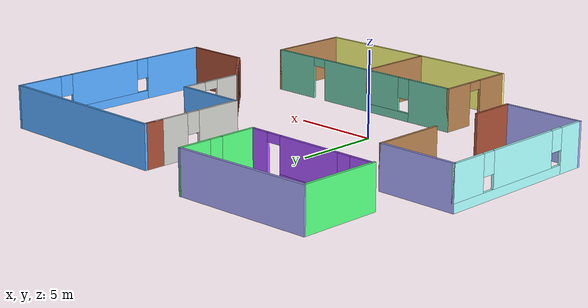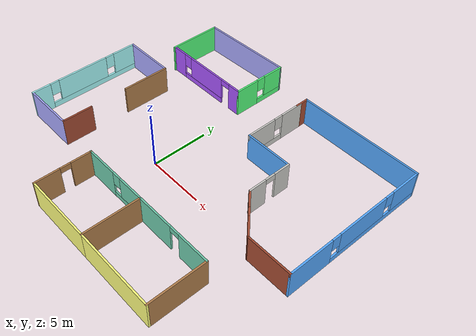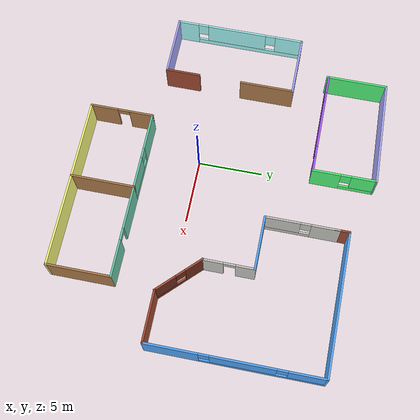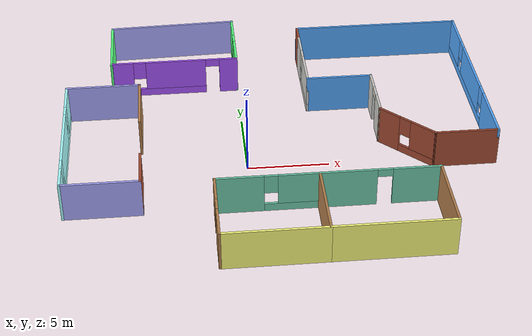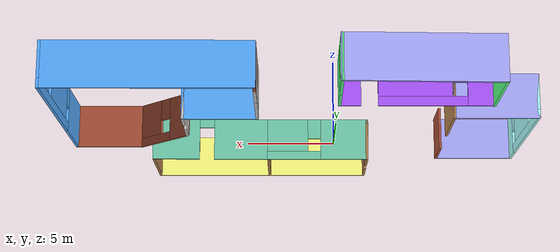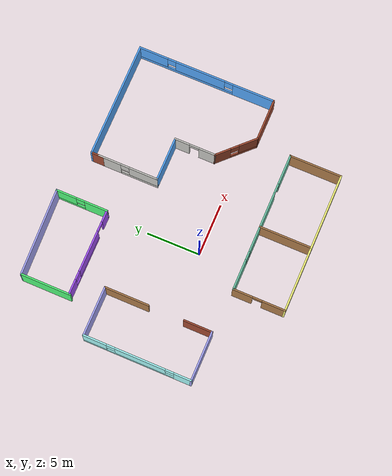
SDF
<?xml version='1.0'?>
<sdf version='1.6'>
  <model name='project_world'>
    <pose frame=''>2.07578 2.357 0 0 -0 0</pose>
    <link name='Wall_1'>
      <pose frame=''>-1.23578 -6.487 0 0 -0 0</pose>
      <visual name='Wall_1_Visual_0'>
        <pose frame=''>-1.65552 0 1.25 0 -0 0</pose>
        <geometry>
          <box>
            <size>2.93896 0.15 2.5</size>
          </box>
        </geometry>
        <material>
          <script>
            <uri>file://media/materials/scripts/gazebo.material</uri>
            <name>Gazebo/Grey</name>
          </script>
          <ambient>0.435294 0.796078 0.67451 1</ambient>
        </material>
        <meta>
          <layer>0</layer>
        </meta>
      </visual>
      <collision name='Wall_1_Collision_0'>
        <geometry>
          <box>
            <size>2.93896 0.15 2.5</size>
          </box>
        </geometry>
        <pose frame=''>-1.65552 0 1.25 0 -0 0</pose>
      </collision>
      <visual name='Wall_1_Visual_1'>
        <pose frame=''>1.46948 0 0.25 0 -0 0</pose>
        <geometry>
          <box>
            <size>3.31104 0.15 0.5</size>
          </box>
        </geometry>
        <material>
          <script>
            <uri>file://media/materials/scripts/gazebo.material</uri>
            <name>Gazebo/Grey</name>
          </script>
          <ambient>0.435294 0.796078 0.67451 1</ambient>
        </material>
        <meta>
          <layer>0</layer>
        </meta>
      </visual>
      <collision name='Wall_1_Collision_1'>
        <geometry>
          <box>
            <size>3.31104 0.15 0.5</size>
          </box>
        </geometry>
        <pose frame=''>1.46948 0 0.25 0 -0 0</pose>
      </collision>
      <visual name='Wall_1_Visual_2'>
        <pose frame=''>1.86948 0 1.5 0 -0 0</pose>
        <geometry>
          <box>
            <size>2.51104 0.15 2</size>
          </box>
        </geometry>
        <material>
          <script>
            <uri>file://media/materials/scripts/gazebo.material</uri>
            <name>Gazebo/Grey</name>
          </script>
          <ambient>0.435294 0.796078 0.67451 1</ambient>
        </material>
        <meta>
          <layer>0</layer>
        </meta>
      </visual>
      <collision name='Wall_1_Collision_2'>
        <geometry>
          <box>
            <size>2.51104 0.15 2</size>
          </box>
        </geometry>
        <pose frame=''>1.86948 0 1.5 0 -0 0</pose>
      </collision>
      <visual name='Wall_1_Visual_3'>
        <pose frame=''>0.213964 0 1.9 0 -0 0</pose>
        <geometry>
          <box>
            <size>0.8 0.15 1.2</size>
          </box>
        </geometry>
        <material>
          <script>
            <uri>file://media/materials/scripts/gazebo.material</uri>
            <name>Gazebo/Grey</name>
          </script>
          <ambient>0.435294 0.796078 0.67451 1</ambient>
        </material>
        <meta>
          <layer>0</layer>
        </meta>
      </visual>
      <collision name='Wall_1_Collision_3'>
        <geometry>
          <box>
            <size>0.8 0.15 1.2</size>
          </box>
        </geometry>
        <pose frame=''>0.213964 0 1.9 0 -0 0</pose>
      </collision>
    </link>
    <link name='Wall_11'>
      <collision name='Wall_11_Collision'>
        <geometry>
          <box>
            <size>2.75 0.15 2.5</size>
          </box>
        </geometry>
        <pose frame=''>0 0 1.25 0 -0 0</pose>
      </collision>
      <visual name='Wall_11_Visual'>
        <pose frame=''>0 0 1.25 0 -0 0</pose>
        <geometry>
          <box>
            <size>2.75 0.15 2.5</size>
          </box>
        </geometry>
        <material>
          <script>
            <uri>file://media/materials/scripts/gazebo.material</uri>
            <name>Gazebo/Bricks</name>
          </script>
          <ambient>1 1 1 1</ambient>
        </material>
        <meta>
          <layer>0</layer>
        </meta>
      </visual>
      <pose frame=''>-8.5094 -4.95184 0 0 -0 1.5708</pose>
    </link>
    <link name='Wall_13'>
      <pose frame=''>-6.18981 6.48446 0 0 -0 0</pose>
      <visual name='Wall_13_Visual_0'>
        <pose frame=''>-3.41981 0 1.25 0 -0 0</pose>
        <geometry>
          <box>
            <size>1.41037 0.15 2.5</size>
          </box>
        </geometry>
        <material>
          <script>
            <uri>file://media/materials/scripts/gazebo.material</uri>
            <name>Gazebo/Grey</name>
          </script>
          <ambient>0.666667 0.333333 1 1</ambient>
        </material>
        <meta>
          <layer>0</layer>
        </meta>
      </visual>
      <collision name='Wall_13_Collision_0'>
        <geometry>
          <box>
            <size>1.41037 0.15 2.5</size>
          </box>
        </geometry>
        <pose frame=''>-3.41981 0 1.25 0 -0 0</pose>
      </collision>
      <visual name='Wall_13_Visual_1'>
        <pose frame=''>3.52234 0 1.25 0 -0 0</pose>
        <geometry>
          <box>
            <size>1.20531 0.15 2.5</size>
          </box>
        </geometry>
        <material>
          <script>
            <uri>file://media/materials/scripts/gazebo.material</uri>
            <name>Gazebo/Grey</name>
          </script>
          <ambient>0.666667 0.333333 1 1</ambient>
        </material>
        <meta>
          <layer>0</layer>
        </meta>
      </visual>
      <collision name='Wall_13_Collision_1'>
        <geometry>
          <box>
            <size>1.20531 0.15 2.5</size>
          </box>
        </geometry>
        <pose frame=''>3.52234 0 1.25 0 -0 0</pose>
      </collision>
      <visual name='Wall_13_Visual_2'>
        <pose frame=''>-0.34747 0 0.25 0 -0 0</pose>
        <geometry>
          <box>
            <size>4.73431 0.15 0.5</size>
          </box>
        </geometry>
        <material>
          <script>
            <uri>file://media/materials/scripts/gazebo.material</uri>
            <name>Gazebo/Grey</name>
          </script>
          <ambient>0.666667 0.333333 1 1</ambient>
        </material>
        <meta>
          <layer>0</layer>
        </meta>
      </visual>
      <collision name='Wall_13_Collision_2'>
        <geometry>
          <box>
            <size>4.73431 0.15 0.5</size>
          </box>
        </geometry>
        <pose frame=''>-0.34747 0 0.25 0 -0 0</pose>
      </collision>
      <visual name='Wall_13_Visual_3'>
        <pose frame=''>0.05253 0 1.5 0 -0 0</pose>
        <geometry>
          <box>
            <size>3.93431 0.15 2</size>
          </box>
        </geometry>
        <material>
          <script>
            <uri>file://media/materials/scripts/gazebo.material</uri>
            <name>Gazebo/Grey</name>
          </script>
          <ambient>0.666667 0.333333 1 1</ambient>
        </material>
        <meta>
          <layer>0</layer>
        </meta>
      </visual>
      <collision name='Wall_13_Collision_3'>
        <geometry>
          <box>
            <size>3.93431 0.15 2</size>
          </box>
        </geometry>
        <pose frame=''>0.05253 0 1.5 0 -0 0</pose>
      </collision>
      <visual name='Wall_13_Visual_4'>
        <pose frame=''>-2.31463 0 1.9 0 -0 0</pose>
        <geometry>
          <box>
            <size>0.8 0.15 1.2</size>
          </box>
        </geometry>
        <material>
          <script>
            <uri>file://media/materials/scripts/gazebo.material</uri>
            <name>Gazebo/Grey</name>
          </script>
          <ambient>0.666667 0.333333 1 1</ambient>
        </material>
        <meta>
          <layer>0</layer>
        </meta>
      </visual>
      <collision name='Wall_13_Collision_4'>
        <geometry>
          <box>
            <size>0.8 0.15 1.2</size>
          </box>
        </geometry>
        <pose frame=''>-2.31463 0 1.9 0 -0 0</pose>
      </collision>
      <visual name='Wall_13_Visual_5'>
        <pose frame=''>2.46969 0 2.25 0 -0 0</pose>
        <geometry>
          <box>
            <size>0.9 0.15 0.5</size>
          </box>
        </geometry>
        <material>
          <script>
            <uri>file://media/materials/scripts/gazebo.material</uri>
            <name>Gazebo/Grey</name>
          </script>
          <ambient>0.666667 0.333333 1 1</ambient>
        </material>
        <meta>
          <layer>0</layer>
        </meta>
      </visual>
      <collision name='Wall_13_Collision_5'>
        <geometry>
          <box>
            <size>0.9 0.15 0.5</size>
          </box>
        </geometry>
        <pose frame=''>2.46969 0 2.25 0 -0 0</pose>
      </collision>
    </link>
    <link name='Wall_14'>
      <pose frame=''>-2.13981 8.90946 0 0 -0 1.5708</pose>
      <visual name='Wall_14_Visual_0'>
        <pose frame=''>-1.38846 0 1.25 0 -0 0</pose>
        <geometry>
          <box>
            <size>2.22308 0.15 2.5</size>
          </box>
        </geometry>
        <material>
          <script>
            <uri>file://media/materials/scripts/gazebo.material</uri>
            <name>Gazebo/Grey</name>
          </script>
          <ambient>0.333333 1 0.498039 1</ambient>
        </material>
        <meta>
          <layer>0</layer>
        </meta>
      </visual>
      <collision name='Wall_14_Collision_0'>
        <geometry>
          <box>
            <size>2.22308 0.15 2.5</size>
          </box>
        </geometry>
        <pose frame=''>-1.38846 0 1.25 0 -0 0</pose>
      </collision>
      <visual name='Wall_14_Visual_1'>
        <pose frame=''>1.11154 0 0.25 0 -0 0</pose>
        <geometry>
          <box>
            <size>2.77692 0.15 0.5</size>
          </box>
        </geometry>
        <material>
          <script>
            <uri>file://media/materials/scripts/gazebo.material</uri>
            <name>Gazebo/Grey</name>
          </script>
          <ambient>0.333333 1 0.498039 1</ambient>
        </material>
        <meta>
          <layer>0</layer>
        </meta>
      </visual>
      <collision name='Wall_14_Collision_1'>
        <geometry>
          <box>
            <size>2.77692 0.15 0.5</size>
          </box>
        </geometry>
        <pose frame=''>1.11154 0 0.25 0 -0 0</pose>
      </collision>
      <visual name='Wall_14_Visual_2'>
        <pose frame=''>1.51154 0 1.5 0 -0 0</pose>
        <geometry>
          <box>
            <size>1.97692 0.15 2</size>
          </box>
        </geometry>
        <material>
          <script>
            <uri>file://media/materials/scripts/gazebo.material</uri>
            <name>Gazebo/Grey</name>
          </script>
          <ambient>0.333333 1 0.498039 1</ambient>
        </material>
        <meta>
          <layer>0</layer>
        </meta>
      </visual>
      <collision name='Wall_14_Collision_2'>
        <geometry>
          <box>
            <size>1.97692 0.15 2</size>
          </box>
        </geometry>
        <pose frame=''>1.51154 0 1.5 0 -0 0</pose>
      </collision>
      <visual name='Wall_14_Visual_3'>
        <pose frame=''>0.123076 0 1.9 0 -0 0</pose>
        <geometry>
          <box>
            <size>0.8 0.15 1.2</size>
          </box>
        </geometry>
        <material>
          <script>
            <uri>file://media/materials/scripts/gazebo.material</uri>
            <name>Gazebo/Grey</name>
          </script>
          <ambient>0.333333 1 0.498039 1</ambient>
        </material>
        <meta>
          <layer>0</layer>
        </meta>
      </visual>
      <collision name='Wall_14_Collision_3'>
        <geometry>
          <box>
            <size>0.8 0.15 1.2</size>
          </box>
        </geometry>
        <pose frame=''>0.123076 0 1.9 0 -0 0</pose>
      </collision>
    </link>
    <link name='Wall_15'>
      <collision name='Wall_15_Collision'>
        <geometry>
          <box>
            <size>8.3252 0.15 2.5</size>
          </box>
        </geometry>
        <pose frame=''>0 0 1.25 0 -0 0</pose>
      </collision>
      <visual name='Wall_15_Visual'>
        <pose frame=''>0 0 1.25 0 -0 0</pose>
        <geometry>
          <box>
            <size>8.3252 0.15 2.5</size>
          </box>
        </geometry>
        <material>
          <script>
            <uri>file://media/materials/scripts/gazebo.material</uri>
            <name>Gazebo/Grey</name>
          </script>
          <ambient>0.666667 0.666667 1 1</ambient>
        </material>
        <meta>
          <layer>0</layer>
        </meta>
      </visual>
      <pose frame=''>-6.22499 11.1937 0 0 0 -3.10716</pose>
    </link>
    <link name='Wall_16'>
      <collision name='Wall_16_Collision'>
        <geometry>
          <box>
            <size>4.75 0.15 2.5</size>
          </box>
        </geometry>
        <pose frame=''>0 0 1.25 0 -0 0</pose>
      </collision>
      <visual name='Wall_16_Visual'>
        <pose frame=''>0 0 1.25 0 -0 0</pose>
        <geometry>
          <box>
            <size>4.75 0.15 2.5</size>
          </box>
        </geometry>
        <material>
          <script>
            <uri>file://media/materials/scripts/gazebo.material</uri>
            <name>Gazebo/Grey</name>
          </script>
          <ambient>0.333333 1 0.498039 1</ambient>
        </material>
        <meta>
          <layer>0</layer>
        </meta>
      </visual>
      <pose frame=''>-10.3102 8.68268 0 0 0 -1.5708</pose>
    </link>
    <link name='Wall_18'>
      <pose frame=''>5.36422 -6.487 0 0 -0 0</pose>
      <visual name='Wall_18_Visual_0'>
        <pose frame=''>-1.90549 0 1.25 0 -0 0</pose>
        <geometry>
          <box>
            <size>3.43901 0.15 2.5</size>
          </box>
        </geometry>
        <material>
          <script>
            <uri>file://media/materials/scripts/gazebo.material</uri>
            <name>Gazebo/Grey</name>
          </script>
          <ambient>0.435294 0.796078 0.67451 1</ambient>
        </material>
        <meta>
          <layer>0</layer>
        </meta>
      </visual>
      <collision name='Wall_18_Collision_0'>
        <geometry>
          <box>
            <size>3.43901 0.15 2.5</size>
          </box>
        </geometry>
        <pose frame=''>-1.90549 0 1.25 0 -0 0</pose>
      </collision>
      <visual name='Wall_18_Visual_1'>
        <pose frame=''>2.16951 0 1.25 0 -0 0</pose>
        <geometry>
          <box>
            <size>2.91099 0.15 2.5</size>
          </box>
        </geometry>
        <material>
          <script>
            <uri>file://media/materials/scripts/gazebo.material</uri>
            <name>Gazebo/Grey</name>
          </script>
          <ambient>0.435294 0.796078 0.67451 1</ambient>
        </material>
        <meta>
          <layer>0</layer>
        </meta>
      </visual>
      <collision name='Wall_18_Collision_1'>
        <geometry>
          <box>
            <size>2.91099 0.15 2.5</size>
          </box>
        </geometry>
        <pose frame=''>2.16951 0 1.25 0 -0 0</pose>
      </collision>
      <visual name='Wall_18_Visual_2'>
        <pose frame=''>0.264014 0 2.25 0 -0 0</pose>
        <geometry>
          <box>
            <size>0.9 0.15 0.5</size>
          </box>
        </geometry>
        <material>
          <script>
            <uri>file://media/materials/scripts/gazebo.material</uri>
            <name>Gazebo/Grey</name>
          </script>
          <ambient>0.435294 0.796078 0.67451 1</ambient>
        </material>
        <meta>
          <layer>0</layer>
        </meta>
      </visual>
      <collision name='Wall_18_Collision_2'>
        <geometry>
          <box>
            <size>0.9 0.15 0.5</size>
          </box>
        </geometry>
        <pose frame=''>0.264014 0 2.25 0 -0 0</pose>
      </collision>
    </link>
    <link name='Wall_19'>
      <collision name='Wall_19_Collision'>
        <geometry>
          <box>
            <size>5 0.15 2.5</size>
          </box>
        </geometry>
        <pose frame=''>0 0 1.25 0 -0 0</pose>
      </collision>
      <visual name='Wall_19_Visual'>
        <pose frame=''>0 0 1.25 0 -0 0</pose>
        <geometry>
          <box>
            <size>5 0.15 2.5</size>
          </box>
        </geometry>
        <material>
          <script>
            <uri>file://media/materials/scripts/gazebo.material</uri>
            <name>Gazebo/Wood</name>
          </script>
          <ambient>1 1 1 1</ambient>
        </material>
        <meta>
          <layer>0</layer>
        </meta>
      </visual>
      <pose frame=''>8.91422 -8.912 0 0 0 -1.5708</pose>
    </link>
    <link name='Wall_2'>
      <collision name='Wall_2_Collision'>
        <geometry>
          <box>
            <size>5 0.15 2.5</size>
          </box>
        </geometry>
        <pose frame=''>0 0 1.25 0 -0 0</pose>
      </collision>
      <visual name='Wall_2_Visual'>
        <pose frame=''>0 0 1.25 0 -0 0</pose>
        <geometry>
          <box>
            <size>5 0.15 2.5</size>
          </box>
        </geometry>
        <material>
          <script>
            <uri>file://media/materials/scripts/gazebo.material</uri>
            <name>Gazebo/Wood</name>
          </script>
          <ambient>1 1 1 1</ambient>
        </material>
        <meta>
          <layer>0</layer>
        </meta>
      </visual>
      <pose frame=''>1.81422 -8.912 0 0 0 -1.5708</pose>
    </link>
    <link name='Wall_20'>
      <collision name='Wall_20_Collision'>
        <geometry>
          <box>
            <size>7.25 0.15 2.5</size>
          </box>
        </geometry>
        <pose frame=''>0 0 1.25 0 -0 0</pose>
      </collision>
      <visual name='Wall_20_Visual'>
        <pose frame=''>0 0 1.25 0 -0 0</pose>
        <geometry>
          <box>
            <size>7.25 0.15 2.5</size>
          </box>
        </geometry>
        <material>
          <script>
            <uri>file://media/materials/scripts/gazebo.material</uri>
            <name>Gazebo/Grey</name>
          </script>
          <ambient>1 1 0.498039 1</ambient>
        </material>
        <meta>
          <layer>0</layer>
        </meta>
      </visual>
      <pose frame=''>5.36422 -11.337 0 0 -0 3.14159</pose>
    </link>
    <link name='Wall_22'>
      <pose frame=''>2.26026 6.37326 0 0 0 -1.5708</pose>
      <visual name='Wall_22_Visual_0'>
        <pose frame=''>-1.78632 0 1.25 0 -0 0</pose>
        <geometry>
          <box>
            <size>2.17736 0.15 2.5</size>
          </box>
        </geometry>
        <material>
          <script>
            <uri>file://media/materials/scripts/gazebo.material</uri>
            <name>Gazebo/CeilingTiled</name>
          </script>
          <ambient>1 0.666667 1 1</ambient>
        </material>
        <meta>
          <layer>0</layer>
        </meta>
      </visual>
      <collision name='Wall_22_Collision_0'>
        <geometry>
          <box>
            <size>2.17736 0.15 2.5</size>
          </box>
        </geometry>
        <pose frame=''>-1.78632 0 1.25 0 -0 0</pose>
      </collision>
      <visual name='Wall_22_Visual_1'>
        <pose frame=''>1.08868 0 0.25 0 -0 0</pose>
        <geometry>
          <box>
            <size>3.57264 0.15 0.5</size>
          </box>
        </geometry>
        <material>
          <script>
            <uri>file://media/materials/scripts/gazebo.material</uri>
            <name>Gazebo/CeilingTiled</name>
          </script>
          <ambient>1 0.666667 1 1</ambient>
        </material>
        <meta>
          <layer>0</layer>
        </meta>
      </visual>
      <collision name='Wall_22_Collision_1'>
        <geometry>
          <box>
            <size>3.57264 0.15 0.5</size>
          </box>
        </geometry>
        <pose frame=''>1.08868 0 0.25 0 -0 0</pose>
      </collision>
      <visual name='Wall_22_Visual_2'>
        <pose frame=''>1.48868 0 1.5 0 -0 0</pose>
        <geometry>
          <box>
            <size>2.77264 0.15 2</size>
          </box>
        </geometry>
        <material>
          <script>
            <uri>file://media/materials/scripts/gazebo.material</uri>
            <name>Gazebo/CeilingTiled</name>
          </script>
          <ambient>1 0.666667 1 1</ambient>
        </material>
        <meta>
          <layer>0</layer>
        </meta>
      </visual>
      <collision name='Wall_22_Collision_2'>
        <geometry>
          <box>
            <size>2.77264 0.15 2</size>
          </box>
        </geometry>
        <pose frame=''>1.48868 0 1.5 0 -0 0</pose>
      </collision>
      <visual name='Wall_22_Visual_3'>
        <pose frame=''>-0.297644 0 1.9 0 -0 0</pose>
        <geometry>
          <box>
            <size>0.8 0.15 1.2</size>
          </box>
        </geometry>
        <material>
          <script>
            <uri>file://media/materials/scripts/gazebo.material</uri>
            <name>Gazebo/CeilingTiled</name>
          </script>
          <ambient>1 0.666667 1 1</ambient>
        </material>
        <meta>
          <layer>0</layer>
        </meta>
      </visual>
      <collision name='Wall_22_Collision_3'>
        <geometry>
          <box>
            <size>0.8 0.15 1.2</size>
          </box>
        </geometry>
        <pose frame=''>-0.297644 0 1.9 0 -0 0</pose>
      </collision>
    </link>
    <link name='Wall_23'>
      <collision name='Wall_23_Collision'>
        <geometry>
          <box>
            <size>4.25 0.15 2.5</size>
          </box>
        </geometry>
        <pose frame=''>0 0 1.25 0 -0 0</pose>
      </collision>
      <visual name='Wall_23_Visual'>
        <pose frame=''>0 0 1.25 0 -0 0</pose>
        <geometry>
          <box>
            <size>4.25 0.15 2.5</size>
          </box>
        </geometry>
        <material>
          <script>
            <uri>file://media/materials/scripts/gazebo.material</uri>
            <name>Gazebo/Grey</name>
          </script>
          <ambient>0.333333 0.666667 1 1</ambient>
        </material>
        <meta>
          <layer>0</layer>
        </meta>
      </visual>
      <pose frame=''>4.31026 3.57326 0 0 -0 0</pose>
    </link>
    <link name='Wall_24'>
      <pose frame=''>6.36026 1.64826 0 0 0 -1.5708</pose>
      <visual name='Wall_24_Visual_0'>
        <pose frame=''>-1.25855 0 1.25 0 -0 0</pose>
        <geometry>
          <box>
            <size>1.4829 0.15 2.5</size>
          </box>
        </geometry>
        <material>
          <script>
            <uri>file://media/materials/scripts/gazebo.material</uri>
            <name>Gazebo/CeilingTiled</name>
          </script>
          <ambient>0.760784 0.662745 0.627451 1</ambient>
        </material>
        <meta>
          <layer>0</layer>
        </meta>
      </visual>
      <collision name='Wall_24_Collision_0'>
        <geometry>
          <box>
            <size>1.4829 0.15 2.5</size>
          </box>
        </geometry>
        <pose frame=''>-1.25855 0 1.25 0 -0 0</pose>
      </collision>
      <visual name='Wall_24_Visual_1'>
        <pose frame=''>1.19145 0 1.25 0 -0 0</pose>
        <geometry>
          <box>
            <size>1.6171 0.15 2.5</size>
          </box>
        </geometry>
        <material>
          <script>
            <uri>file://media/materials/scripts/gazebo.material</uri>
            <name>Gazebo/CeilingTiled</name>
          </script>
          <ambient>0.760784 0.662745 0.627451 1</ambient>
        </material>
        <meta>
          <layer>0</layer>
        </meta>
      </visual>
      <collision name='Wall_24_Collision_1'>
        <geometry>
          <box>
            <size>1.6171 0.15 2.5</size>
          </box>
        </geometry>
        <pose frame=''>1.19145 0 1.25 0 -0 0</pose>
      </collision>
      <visual name='Wall_24_Visual_2'>
        <pose frame=''>-0.067102 0 2.25 0 -0 0</pose>
        <geometry>
          <box>
            <size>0.9 0.15 0.5</size>
          </box>
        </geometry>
        <material>
          <script>
            <uri>file://media/materials/scripts/gazebo.material</uri>
            <name>Gazebo/CeilingTiled</name>
          </script>
          <ambient>0.760784 0.662745 0.627451 1</ambient>
        </material>
        <meta>
          <layer>0</layer>
        </meta>
      </visual>
      <collision name='Wall_24_Collision_2'>
        <geometry>
          <box>
            <size>0.9 0.15 0.5</size>
          </box>
        </geometry>
        <pose frame=''>-0.067102 0 2.25 0 -0 0</pose>
      </collision>
    </link>
    <link name='Wall_25'>
      <pose frame=''>7.80983 -1.72631 0 0 0 -0.785398</pose>
      <visual name='Wall_25_Visual_0'>
        <pose frame=''>-1.33199 0 1.25 0 -0 0</pose>
        <geometry>
          <box>
            <size>1.58602 0.15 2.5</size>
          </box>
        </geometry>
        <material>
          <script>
            <uri>file://media/materials/scripts/gazebo.material</uri>
            <name>Gazebo/Bricks</name>
          </script>
          <ambient>1 1 1 1</ambient>
        </material>
        <meta>
          <layer>0</layer>
        </meta>
      </visual>
      <collision name='Wall_25_Collision_0'>
        <geometry>
          <box>
            <size>1.58602 0.15 2.5</size>
          </box>
        </geometry>
        <pose frame=''>-1.33199 0 1.25 0 -0 0</pose>
      </collision>
      <visual name='Wall_25_Visual_1'>
        <pose frame=''>0.793009 0 0.25 0 -0 0</pose>
        <geometry>
          <box>
            <size>2.66398 0.15 0.5</size>
          </box>
        </geometry>
        <material>
          <script>
            <uri>file://media/materials/scripts/gazebo.material</uri>
            <name>Gazebo/Bricks</name>
          </script>
          <ambient>1 1 1 1</ambient>
        </material>
        <meta>
          <layer>0</layer>
        </meta>
      </visual>
      <collision name='Wall_25_Collision_1'>
        <geometry>
          <box>
            <size>2.66398 0.15 0.5</size>
          </box>
        </geometry>
        <pose frame=''>0.793009 0 0.25 0 -0 0</pose>
      </collision>
      <visual name='Wall_25_Visual_2'>
        <pose frame=''>1.19301 0 1.5 0 -0 0</pose>
        <geometry>
          <box>
            <size>1.86398 0.15 2</size>
          </box>
        </geometry>
        <material>
          <script>
            <uri>file://media/materials/scripts/gazebo.material</uri>
            <name>Gazebo/Bricks</name>
          </script>
          <ambient>1 1 1 1</ambient>
        </material>
        <meta>
          <layer>0</layer>
        </meta>
      </visual>
      <collision name='Wall_25_Collision_2'>
        <geometry>
          <box>
            <size>1.86398 0.15 2</size>
          </box>
        </geometry>
        <pose frame=''>1.19301 0 1.5 0 -0 0</pose>
      </collision>
      <visual name='Wall_25_Visual_3'>
        <pose frame=''>-0.138981 0 1.9 0 -0 0</pose>
        <geometry>
          <box>
            <size>0.8 0.15 1.2</size>
          </box>
        </geometry>
        <material>
          <script>
            <uri>file://media/materials/scripts/gazebo.material</uri>
            <name>Gazebo/Bricks</name>
          </script>
          <ambient>1 1 1 1</ambient>
        </material>
        <meta>
          <layer>0</layer>
        </meta>
      </visual>
      <collision name='Wall_25_Collision_3'>
        <geometry>
          <box>
            <size>0.8 0.15 1.2</size>
          </box>
        </geometry>
        <pose frame=''>-0.138981 0 1.9 0 -0 0</pose>
      </collision>
    </link>
    <link name='Wall_26'>
      <collision name='Wall_26_Collision'>
        <geometry>
          <box>
            <size>4 0.15 2.5</size>
          </box>
        </geometry>
        <pose frame=''>0 0 1.25 0 -0 0</pose>
      </collision>
      <visual name='Wall_26_Visual'>
        <pose frame=''>0 0 1.25 0 -0 0</pose>
        <geometry>
          <box>
            <size>4 0.15 2.5</size>
          </box>
        </geometry>
        <material>
          <script>
            <uri>file://media/materials/scripts/gazebo.material</uri>
            <name>Gazebo/Bricks</name>
          </script>
          <ambient>1 1 1 1</ambient>
        </material>
        <meta>
          <layer>0</layer>
        </meta>
      </visual>
      <pose frame=''>11.1844 -3.17588 0 0 -0 0</pose>
    </link>
    <link name='Wall_27'>
      <pose frame=''>13.1094 3.37412 0 0 -0 1.5708</pose>
      <visual name='Wall_27_Visual_0'>
        <pose frame=''>-4.60393 0 1.25 0 -0 0</pose>
        <geometry>
          <box>
            <size>4.04214 0.15 2.5</size>
          </box>
        </geometry>
        <material>
          <script>
            <uri>file://media/materials/scripts/gazebo.material</uri>
            <name>Gazebo/Grey</name>
          </script>
          <ambient>0.333333 0.666667 1 1</ambient>
        </material>
        <meta>
          <layer>0</layer>
        </meta>
      </visual>
      <collision name='Wall_27_Collision_0'>
        <geometry>
          <box>
            <size>4.04214 0.15 2.5</size>
          </box>
        </geometry>
        <pose frame=''>-4.60393 0 1.25 0 -0 0</pose>
      </collision>
      <visual name='Wall_27_Visual_1'>
        <pose frame=''>2.02107 0 0.25 0 -0 0</pose>
        <geometry>
          <box>
            <size>9.20786 0.15 0.5</size>
          </box>
        </geometry>
        <material>
          <script>
            <uri>file://media/materials/scripts/gazebo.material</uri>
            <name>Gazebo/Grey</name>
          </script>
          <ambient>0.333333 0.666667 1 1</ambient>
        </material>
        <meta>
          <layer>0</layer>
        </meta>
      </visual>
      <collision name='Wall_27_Collision_1'>
        <geometry>
          <box>
            <size>9.20786 0.15 0.5</size>
          </box>
        </geometry>
        <pose frame=''>2.02107 0 0.25 0 -0 0</pose>
      </collision>
      <visual name='Wall_27_Visual_2'>
        <pose frame=''>0.610161 0 1.5 0 -0 0</pose>
        <geometry>
          <box>
            <size>4.78604 0.15 2</size>
          </box>
        </geometry>
        <material>
          <script>
            <uri>file://media/materials/scripts/gazebo.material</uri>
            <name>Gazebo/Grey</name>
          </script>
          <ambient>0.333333 0.666667 1 1</ambient>
        </material>
        <meta>
          <layer>0</layer>
        </meta>
      </visual>
      <collision name='Wall_27_Collision_2'>
        <geometry>
          <box>
            <size>4.78604 0.15 2</size>
          </box>
        </geometry>
        <pose frame=''>0.610161 0 1.5 0 -0 0</pose>
      </collision>
      <visual name='Wall_27_Visual_3'>
        <pose frame=''>5.21409 0 1.5 0 -0 0</pose>
        <geometry>
          <box>
            <size>2.82182 0.15 2</size>
          </box>
        </geometry>
        <material>
          <script>
            <uri>file://media/materials/scripts/gazebo.material</uri>
            <name>Gazebo/Grey</name>
          </script>
          <ambient>0.333333 0.666667 1 1</ambient>
        </material>
        <meta>
          <layer>0</layer>
        </meta>
      </visual>
      <collision name='Wall_27_Collision_3'>
        <geometry>
          <box>
            <size>2.82182 0.15 2</size>
          </box>
        </geometry>
        <pose frame=''>5.21409 0 1.5 0 -0 0</pose>
      </collision>
      <visual name='Wall_27_Visual_4'>
        <pose frame=''>-2.18286 0 1.9 0 -0 0</pose>
        <geometry>
          <box>
            <size>0.8 0.15 1.2</size>
          </box>
        </geometry>
        <material>
          <script>
            <uri>file://media/materials/scripts/gazebo.material</uri>
            <name>Gazebo/Grey</name>
          </script>
          <ambient>0.333333 0.666667 1 1</ambient>
        </material>
        <meta>
          <layer>0</layer>
        </meta>
      </visual>
      <collision name='Wall_27_Collision_4'>
        <geometry>
          <box>
            <size>0.8 0.15 1.2</size>
          </box>
        </geometry>
        <pose frame=''>-2.18286 0 1.9 0 -0 0</pose>
      </collision>
      <visual name='Wall_27_Visual_5'>
        <pose frame=''>3.40318 0 1.9 0 -0 0</pose>
        <geometry>
          <box>
            <size>0.8 0.15 1.2</size>
          </box>
        </geometry>
        <material>
          <script>
            <uri>file://media/materials/scripts/gazebo.material</uri>
            <name>Gazebo/Grey</name>
          </script>
          <ambient>0.333333 0.666667 1 1</ambient>
        </material>
        <meta>
          <layer>0</layer>
        </meta>
      </visual>
      <collision name='Wall_27_Collision_5'>
        <geometry>
          <box>
            <size>0.8 0.15 1.2</size>
          </box>
        </geometry>
        <pose frame=''>3.40318 0 1.9 0 -0 0</pose>
      </collision>
    </link>
    <link name='Wall_28'>
      <collision name='Wall_28_Collision'>
        <geometry>
          <box>
            <size>11 0.15 2.5</size>
          </box>
        </geometry>
        <pose frame=''>0 0 1.25 0 -0 0</pose>
      </collision>
      <visual name='Wall_28_Visual'>
        <pose frame=''>0 0 1.25 0 -0 0</pose>
        <geometry>
          <box>
            <size>11 0.15 2.5</size>
          </box>
        </geometry>
        <material>
          <script>
            <uri>file://media/materials/scripts/gazebo.material</uri>
            <name>Gazebo/Grey</name>
          </script>
          <ambient>0.333333 0.666667 1 1</ambient>
        </material>
        <meta>
          <layer>0</layer>
        </meta>
      </visual>
      <pose frame=''>7.6844 9.92412 0 0 -0 3.14159</pose>
    </link>
    <link name='Wall_29'>
      <collision name='Wall_29_Collision'>
        <geometry>
          <box>
            <size>1.25 0.15 2.5</size>
          </box>
        </geometry>
        <pose frame=''>0 0 1.25 0 -0 0</pose>
      </collision>
      <visual name='Wall_29_Visual'>
        <pose frame=''>0 0 1.25 0 -0 0</pose>
        <geometry>
          <box>
            <size>1.25 0.15 2.5</size>
          </box>
        </geometry>
        <material>
          <script>
            <uri>file://media/materials/scripts/gazebo.material</uri>
            <name>Gazebo/Bricks</name>
          </script>
          <ambient>1 1 1 1</ambient>
        </material>
        <meta>
          <layer>0</layer>
        </meta>
      </visual>
      <pose frame=''>2.2594 9.37412 0 0 0 -1.5708</pose>
    </link>
    <link name='Wall_3'>
      <collision name='Wall_3_Collision'>
        <geometry>
          <box>
            <size>6.25 0.15 2.5</size>
          </box>
        </geometry>
        <pose frame=''>0 0 1.25 0 -0 0</pose>
      </collision>
      <visual name='Wall_3_Visual'>
        <pose frame=''>0 0 1.25 0 -0 0</pose>
        <geometry>
          <box>
            <size>6.25 0.15 2.5</size>
          </box>
        </geometry>
        <material>
          <script>
            <uri>file://media/materials/scripts/gazebo.material</uri>
            <name>Gazebo/Grey</name>
          </script>
          <ambient>1 1 0.498039 1</ambient>
        </material>
        <meta>
          <layer>0</layer>
        </meta>
      </visual>
      <pose frame=''>-1.23578 -11.337 0 0 -0 3.14159</pose>
    </link>
    <link name='Wall_4'>
      <pose frame=''>-4.28578 -8.912 0 0 -0 1.5708</pose>
      <visual name='Wall_4_Visual_0'>
        <pose frame=''>-1.39761 0 1.25 0 -0 0</pose>
        <geometry>
          <box>
            <size>2.20478 0.15 2.5</size>
          </box>
        </geometry>
        <material>
          <script>
            <uri>file://media/materials/scripts/gazebo.material</uri>
            <name>Gazebo/Wood</name>
          </script>
          <ambient>1 1 1 1</ambient>
        </material>
        <meta>
          <layer>0</layer>
        </meta>
      </visual>
      <collision name='Wall_4_Collision_0'>
        <geometry>
          <box>
            <size>2.20478 0.15 2.5</size>
          </box>
        </geometry>
        <pose frame=''>-1.39761 0 1.25 0 -0 0</pose>
      </collision>
      <visual name='Wall_4_Visual_1'>
        <pose frame=''>1.55239 0 1.25 0 -0 0</pose>
        <geometry>
          <box>
            <size>1.89522 0.15 2.5</size>
          </box>
        </geometry>
        <material>
          <script>
            <uri>file://media/materials/scripts/gazebo.material</uri>
            <name>Gazebo/Wood</name>
          </script>
          <ambient>1 1 1 1</ambient>
        </material>
        <meta>
          <layer>0</layer>
        </meta>
      </visual>
      <collision name='Wall_4_Collision_1'>
        <geometry>
          <box>
            <size>1.89522 0.15 2.5</size>
          </box>
        </geometry>
        <pose frame=''>1.55239 0 1.25 0 -0 0</pose>
      </collision>
      <visual name='Wall_4_Visual_2'>
        <pose frame=''>0.154783 0 2.25 0 -0 0</pose>
        <geometry>
          <box>
            <size>0.9 0.15 0.5</size>
          </box>
        </geometry>
        <material>
          <script>
            <uri>file://media/materials/scripts/gazebo.material</uri>
            <name>Gazebo/Wood</name>
          </script>
          <ambient>1 1 1 1</ambient>
        </material>
        <meta>
          <layer>0</layer>
        </meta>
      </visual>
      <collision name='Wall_4_Collision_2'>
        <geometry>
          <box>
            <size>0.9 0.15 0.5</size>
          </box>
        </geometry>
        <pose frame=''>0.154783 0 2.25 0 -0 0</pose>
      </collision>
    </link>
    <link name='Wall_6'>
      <collision name='Wall_6_Collision'>
        <geometry>
          <box>
            <size>4.75 0.15 2.5</size>
          </box>
        </geometry>
        <pose frame=''>0 0 1.25 0 -0 0</pose>
      </collision>
      <visual name='Wall_6_Visual'>
        <pose frame=''>0 0 1.25 0 -0 0</pose>
        <geometry>
          <box>
            <size>4.75 0.15 2.5</size>
          </box>
        </geometry>
        <material>
          <script>
            <uri>file://media/materials/scripts/gazebo.material</uri>
            <name>Gazebo/Grey</name>
          </script>
          <ambient>0.666667 0.666667 1 1</ambient>
        </material>
        <meta>
          <layer>0</layer>
        </meta>
      </visual>
      <pose frame=''>-10.8094 -6.25184 0 0 -0 3.14159</pose>
    </link>
    <link name='Wall_7'>
      <pose frame=''>-13.1094 -1.20184 0 0 -0 1.5708</pose>
      <visual name='Wall_7_Visual_0'>
        <pose frame=''>-4.27917 0 1.25 0 -0 0</pose>
        <geometry>
          <box>
            <size>1.69166 0.15 2.5</size>
          </box>
        </geometry>
        <material>
          <script>
            <uri>file://media/materials/scripts/gazebo.material</uri>
            <name>Gazebo/Grey</name>
          </script>
          <ambient>0.666667 1 1 1</ambient>
        </material>
        <meta>
          <layer>0</layer>
        </meta>
      </visual>
      <collision name='Wall_7_Collision_0'>
        <geometry>
          <box>
            <size>1.69166 0.15 2.5</size>
          </box>
        </geometry>
        <pose frame=''>-4.27917 0 1.25 0 -0 0</pose>
      </collision>
      <visual name='Wall_7_Visual_1'>
        <pose frame=''>0.84583 0 0.25 0 -0 0</pose>
        <geometry>
          <box>
            <size>8.55834 0.15 0.5</size>
          </box>
        </geometry>
        <material>
          <script>
            <uri>file://media/materials/scripts/gazebo.material</uri>
            <name>Gazebo/Grey</name>
          </script>
          <ambient>0.666667 1 1 1</ambient>
        </material>
        <meta>
          <layer>0</layer>
        </meta>
      </visual>
      <collision name='Wall_7_Collision_1'>
        <geometry>
          <box>
            <size>8.55834 0.15 0.5</size>
          </box>
        </geometry>
        <pose frame=''>0.84583 0 0.25 0 -0 0</pose>
      </collision>
      <visual name='Wall_7_Visual_2'>
        <pose frame=''>-0.266919 0 1.5 0 -0 0</pose>
        <geometry>
          <box>
            <size>4.73284 0.15 2</size>
          </box>
        </geometry>
        <material>
          <script>
            <uri>file://media/materials/scripts/gazebo.material</uri>
            <name>Gazebo/Grey</name>
          </script>
          <ambient>0.666667 1 1 1</ambient>
        </material>
        <meta>
          <layer>0</layer>
        </meta>
      </visual>
      <collision name='Wall_7_Collision_2'>
        <geometry>
          <box>
            <size>4.73284 0.15 2</size>
          </box>
        </geometry>
        <pose frame=''>-0.266919 0 1.5 0 -0 0</pose>
      </collision>
      <visual name='Wall_7_Visual_3'>
        <pose frame=''>4.01225 0 1.5 0 -0 0</pose>
        <geometry>
          <box>
            <size>2.2255 0.15 2</size>
          </box>
        </geometry>
        <material>
          <script>
            <uri>file://media/materials/scripts/gazebo.material</uri>
            <name>Gazebo/Grey</name>
          </script>
          <ambient>0.666667 1 1 1</ambient>
        </material>
        <meta>
          <layer>0</layer>
        </meta>
      </visual>
      <collision name='Wall_7_Collision_3'>
        <geometry>
          <box>
            <size>2.2255 0.15 2</size>
          </box>
        </geometry>
        <pose frame=''>4.01225 0 1.5 0 -0 0</pose>
      </collision>
      <visual name='Wall_7_Visual_4'>
        <pose frame=''>-3.03334 0 1.9 0 -0 0</pose>
        <geometry>
          <box>
            <size>0.8 0.15 1.2</size>
          </box>
        </geometry>
        <material>
          <script>
            <uri>file://media/materials/scripts/gazebo.material</uri>
            <name>Gazebo/Grey</name>
          </script>
          <ambient>0.666667 1 1 1</ambient>
        </material>
        <meta>
          <layer>0</layer>
        </meta>
      </visual>
      <collision name='Wall_7_Collision_4'>
        <geometry>
          <box>
            <size>0.8 0.15 1.2</size>
          </box>
        </geometry>
        <pose frame=''>-3.03334 0 1.9 0 -0 0</pose>
      </collision>
      <visual name='Wall_7_Visual_5'>
        <pose frame=''>2.4995 0 1.9 0 -0 0</pose>
        <geometry>
          <box>
            <size>0.8 0.15 1.2</size>
          </box>
        </geometry>
        <material>
          <script>
            <uri>file://media/materials/scripts/gazebo.material</uri>
            <name>Gazebo/Grey</name>
          </script>
          <ambient>0.666667 1 1 1</ambient>
        </material>
        <meta>
          <layer>0</layer>
        </meta>
      </visual>
      <collision name='Wall_7_Collision_5'>
        <geometry>
          <box>
            <size>0.8 0.15 1.2</size>
          </box>
        </geometry>
        <pose frame=''>2.4995 0 1.9 0 -0 0</pose>
      </collision>
    </link>
    <link name='Wall_8'>
      <collision name='Wall_8_Collision'>
        <geometry>
          <box>
            <size>4.75 0.15 2.5</size>
          </box>
        </geometry>
        <pose frame=''>0 0 1.25 0 -0 0</pose>
      </collision>
      <visual name='Wall_8_Visual'>
        <pose frame=''>0 0 1.25 0 -0 0</pose>
        <geometry>
          <box>
            <size>4.75 0.15 2.5</size>
          </box>
        </geometry>
        <material>
          <script>
            <uri>file://media/materials/scripts/gazebo.material</uri>
            <name>Gazebo/Grey</name>
          </script>
          <ambient>0.666667 0.666667 1 1</ambient>
        </material>
        <meta>
          <layer>0</layer>
        </meta>
      </visual>
      <pose frame=''>-10.8094 3.84816 0 0 -0 0</pose>
    </link>
    <link name='Wall_9'>
      <collision name='Wall_9_Collision'>
        <geometry>
          <box>
            <size>4.25 0.15 2.5</size>
          </box>
        </geometry>
        <pose frame=''>0 0 1.25 0 -0 0</pose>
      </collision>
      <visual name='Wall_9_Visual'>
        <pose frame=''>0 0 1.25 0 -0 0</pose>
        <geometry>
          <box>
            <size>4.25 0.15 2.5</size>
          </box>
        </geometry>
        <material>
          <script>
            <uri>file://media/materials/scripts/gazebo.material</uri>
            <name>Gazebo/Wood</name>
          </script>
          <ambient>1 1 1 1</ambient>
        </material>
        <meta>
          <layer>0</layer>
        </meta>
      </visual>
      <pose frame=''>-8.5094 1.79816 0 0 0 -1.5708</pose>
    </link>
    <static>1</static>
  </model>
</sdf>
